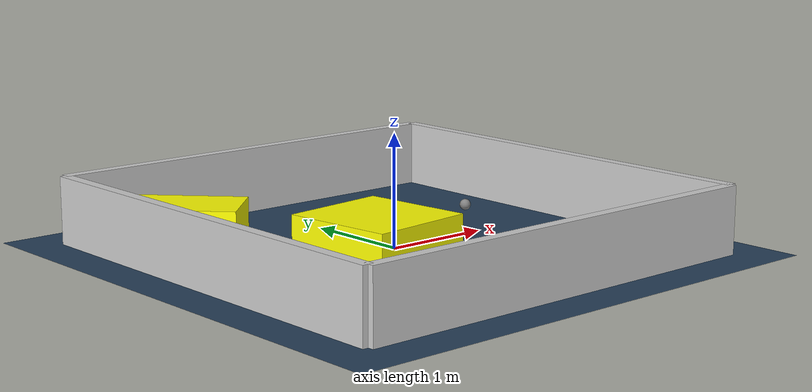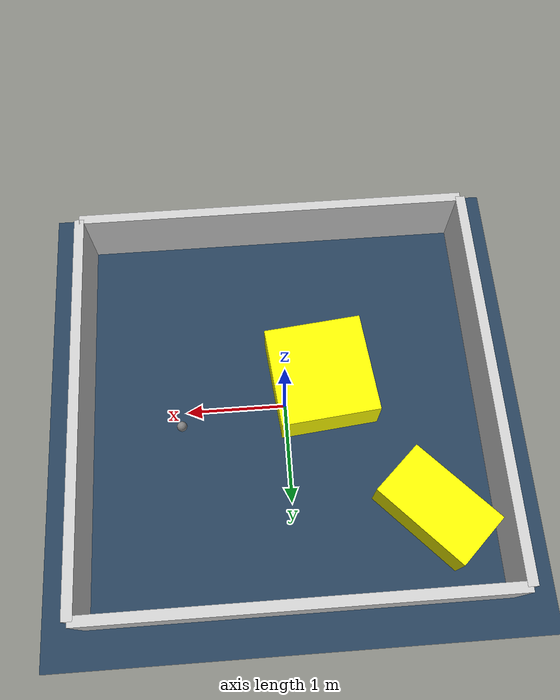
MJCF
<?xml version="1.0" ?>
<mujoco model="generated_environment">
  <option timestep="0.01" integrator="RK4" cone="elliptic"/>
  <default>
    <geom density="1"/>
  </default>
  <asset>
    <texture builtin="gradient" height="3072" rgb1="0.3 0.5 0.7" rgb2="0 0 0" type="skybox" width="512"/>
    <texture builtin="checker" height="300" mark="edge" markrgb="0.8 0.8 0.8" name="groundplane" rgb1="0.2 0.3 0.4" rgb2="0.1 0.2 0.3" type="2d" width="300"/>
    <material name="groundplane" reflectance="0.2" texrepeat="5 5" texture="groundplane" texuniform="true"/>
    <material name="robot" rgba="0.0 1.0 0.0 1"/>
  </asset>
  <worldbody>
    <light dir="0 0 -1" directional="true" pos="0 0 1.5"/>
    <geom condim="4" friction="1.0 0.005 0.001" material="groundplane" name="floor" size="0 0 0.05" type="plane"/>
    <body name="walls">
      <geom name="wall_1" condim="4" pos="-2.0 0.0 0.3" rgba="0.800000011920929 0.800000011920929 0.800000011920929 1.0" size="0.05 2.0 0.3" type="box"/>
      <geom name="wall_2" condim="4" pos="2.0 0.0 0.3" rgba="0.800000011920929 0.800000011920929 0.800000011920929 1.0" size="0.05 2.0 0.3" type="box"/>
      <geom name="wall_3" condim="4" pos="0.0 -2.0 0.3" rgba="0.800000011920929 0.800000011920929 0.800000011920929 1.0" size="2.0 0.05 0.3" type="box"/>
      <geom name="wall_4" condim="4" pos="0.0 2.0 0.3" rgba="0.800000011920929 0.800000011920929 0.800000011920929 1.0" size="2.0 0.05 0.3" type="box"/>
    </body>
    <body name="robot">
      <joint name="joint_x" type="slide" pos="0 0 0" axis="1 0 0"/>
      <joint name="joint_y" type="slide" pos="0 0 0" axis="0 1 0"/>
      <geom name="robot" type="sphere" pos="1.0321809809695606 0.2045924608983496 0.2" size="0.05" mass="5." friction="1.0 0.005 0.0001" condim="4"/>
      <site name="sensor_ball"/>
    </body>
    <body name="obstacle_1_movable">
      <geom name="obstacle_1_movable" condim="4" pos="-0.38334681805965376 -0.22641779971957998 0.2" euler="0 0 186.10042239590078" friction="1.0 0.005 0.001" rgba="1 1 0 1" size="0.49130342167652435 0.5103065496476008 0.2" type="box" mass="0.1"/>
      <joint type="free"/>
    </body>
    <body name="obstacle_2_movable">
      <geom name="obstacle_2_movable" condim="4" pos="-1.3520696724908023 1.1889666657132492 0.2" euler="0 0 313.35792026734885" friction="1.0 0.005 0.001" rgba="1 1 0 1" size="0.5152950486935792 0.29648142837734776 0.2" type="box" mass="0.1"/>
      <joint type="free"/>
    </body>
  </worldbody>
  <actuator>
    <motor name="actuator_x" joint="joint_x" gear="1" ctrlrange="-1 1"/>
    <motor name="actuator_y" joint="joint_y" gear="1" ctrlrange="-1 1"/>
  </actuator>
</mujoco>
